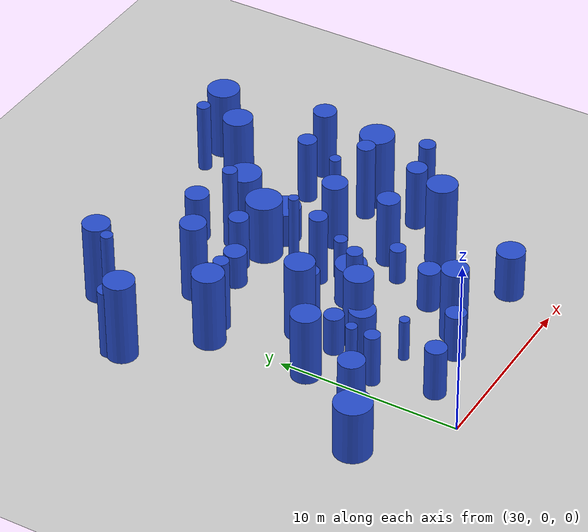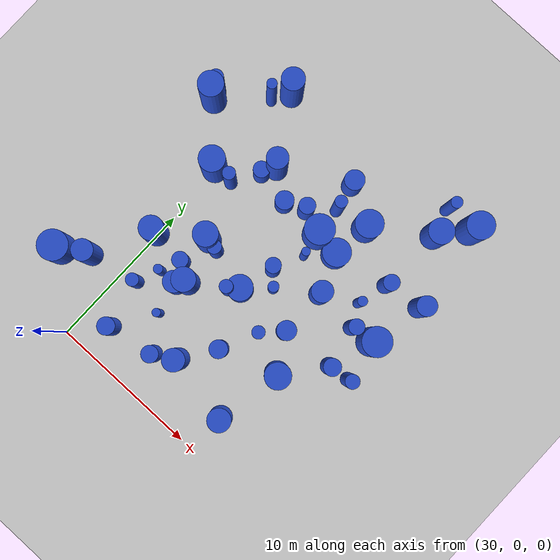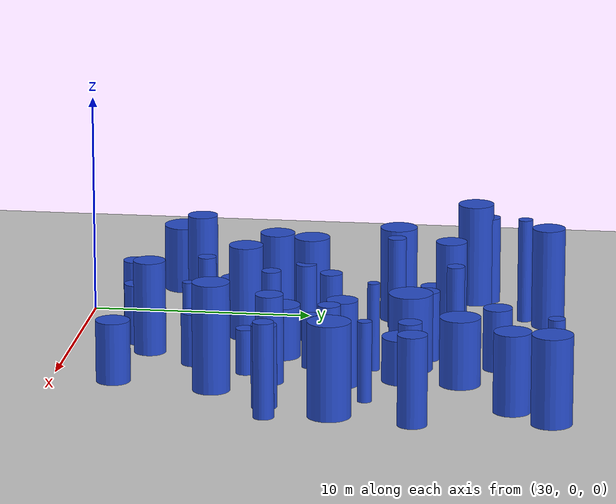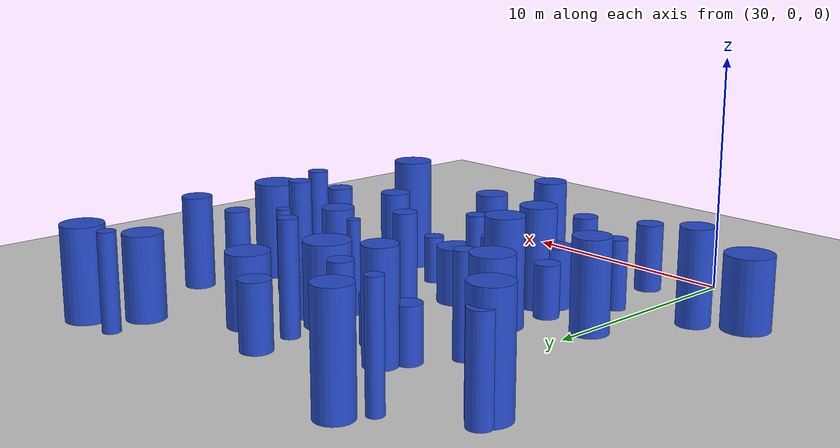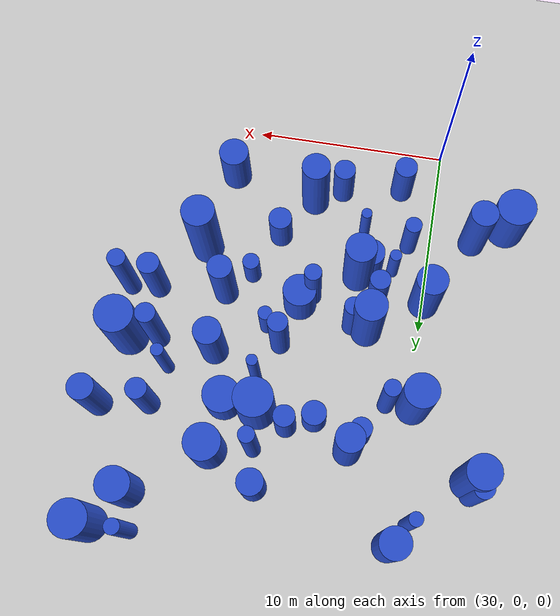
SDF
<sdf version="1.6">
 <world name="default">
  <model name="ground_plane">
   <static>1</static>
   <link name="link">
    <collision name="collision">
     <geometry><plane><normal>0 0 1</normal><size>100 100</size></plane></geometry>
     <surface><friction><ode><mu>100</mu><mu2>50</mu2></ode></friction></surface>
    </collision>
    <visual name="visual">
     <cast_shadows>0</cast_shadows>
     <geometry><plane><normal>0 0 1</normal><size>100 100</size></plane></geometry>
     <material>
      <script><uri>file://media/materials/scripts/gazebo.material</uri><name>Gazebo/Grey</name></script>
     </material>
    </visual>
   </link>
  </model>
  <model name="1">
   <static>0</static>
   <link name="link">
    <inertial>
     <mass>2</mass>
     <inertia><ixx>3.81588</ixx><ixy>0</ixy><ixz>0</ixz><iyy>3.81588</iyy><iyz>0</iyz><izz>0.158534</izz></inertia>
    </inertial>
    <collision name="collision">
     <geometry><cylinder><length>4.73494</length><radius>0.398164</radius></cylinder></geometry>
     <surface><contact><collide_without_contact>1</collide_without_contact></contact></surface>
    </collision>
    <visual name="visual">
     <geometry><cylinder><length>4.73494</length><radius>0.398164</radius></cylinder></geometry>
     <material>
      <script><uri>file://media/materials/scripts/gazebo.material</uri><name>Gazebo/Blue</name></script>
     </material>
    </visual>
    <gravity>0</gravity>
   </link>
   <pose>37.3386 17.4202 2.36747 0 -0 0</pose>
  </model>
  <model name="4">
   <static>0</static>
   <link name="link">
    <inertial>
     <mass>2</mass>
     <inertia><ixx>2.85473</ixx><ixy>0</ixy><ixz>0</ixz><iyy>2.85473</iyy><iyz>0</iyz><izz>0.620901</izz></inertia>
    </inertial>
    <collision name="collision">
     <geometry><cylinder><length>3.90714</length><radius>0.787973</radius></cylinder></geometry>
     <surface><contact><collide_without_contact>1</collide_without_contact></contact></surface>
    </collision>
    <visual name="visual">
     <geometry><cylinder><length>3.90714</length><radius>0.787973</radius></cylinder></geometry>
     <material>
      <script><uri>file://media/materials/scripts/gazebo.material</uri><name>Gazebo/Blue</name></script>
     </material>
    </visual>
    <gravity>0</gravity>
   </link>
   <pose>29.9206 8.51372 1.95357 0 -0 0</pose>
  </model>
  <model name="5">
   <static>0</static>
   <link name="link">
    <inertial>
     <mass>2</mass>
     <inertia><ixx>0.79305</ixx><ixy>0</ixy><ixz>0</ixz><iyy>0.79305</iyy><iyz>0</iyz><izz>0.186767</izz></inertia>
    </inertial>
    <collision name="collision">
     <geometry><cylinder><length>2.0489</length><radius>0.432165</radius></cylinder></geometry>
     <surface><contact><collide_without_contact>1</collide_without_contact></contact></surface>
    </collision>
    <visual name="visual">
     <geometry><cylinder><length>2.0489</length><radius>0.432165</radius></cylinder></geometry>
     <material>
      <script><uri>file://media/materials/scripts/gazebo.material</uri><name>Gazebo/Blue</name></script>
     </material>
    </visual>
    <gravity>0</gravity>
   </link>
   <pose>38.9921 8.31265 1.02445 0 -0 0</pose>
  </model>
  <model name="9">
   <static>0</static>
   <link name="link">
    <inertial>
     <mass>2</mass>
     <inertia><ixx>2.49906</ixx><ixy>0</ixy><ixz>0</ixz><iyy>2.49906</iyy><iyz>0</iyz><izz>0.95958</izz></inertia>
    </inertial>
    <collision name="collision">
     <geometry><cylinder><length>3.48075</length><radius>0.979581</radius></cylinder></geometry>
     <surface><contact><collide_without_contact>1</collide_without_contact></contact></surface>
    </collision>
    <visual name="visual">
     <geometry><cylinder><length>3.48075</length><radius>0.979581</radius></cylinder></geometry>
     <material>
      <script><uri>file://media/materials/scripts/gazebo.material</uri><name>Gazebo/Blue</name></script>
     </material>
    </visual>
    <gravity>0</gravity>
   </link>
   <pose>37.4825 15.4558 1.74037 0 -0 0</pose>
  </model>
  <model name="10">
   <static>0</static>
   <link name="link">
    <inertial>
     <mass>2</mass>
     <inertia><ixx>2.47867</ixx><ixy>0</ixy><ixz>0</ixz><iyy>2.47867</iyy><iyz>0</iyz><izz>0.684649</izz></inertia>
    </inertial>
    <collision name="collision">
     <geometry><cylinder><length>3.58024</length><radius>0.827435</radius></cylinder></geometry>
     <surface><contact><collide_without_contact>1</collide_without_contact></contact></surface>
    </collision>
    <visual name="visual">
     <geometry><cylinder><length>3.58024</length><radius>0.827435</radius></cylinder></geometry>
     <material>
      <script><uri>file://media/materials/scripts/gazebo.material</uri><name>Gazebo/Blue</name></script>
     </material>
    </visual>
    <gravity>0</gravity>
   </link>
   <pose>43.0104 20.4105 1.79012 0 -0 0</pose>
  </model>
  <model name="16">
   <static>0</static>
   <link name="link">
    <inertial>
     <mass>2</mass>
     <inertia><ixx>1.52106</ixx><ixy>0</ixy><ixz>0</ixz><iyy>1.52106</iyy><iyz>0</iyz><izz>0.42879</izz></inertia>
    </inertial>
    <collision name="collision">
     <geometry><cylinder><length>2.8</length><radius>0.65482</radius></cylinder></geometry>
     <surface><contact><collide_without_contact>1</collide_without_contact></contact></surface>
    </collision>
    <visual name="visual">
     <geometry><cylinder><length>2.8</length><radius>0.65482</radius></cylinder></geometry>
     <material>
      <script><uri>file://media/materials/scripts/gazebo.material</uri><name>Gazebo/Blue</name></script>
     </material>
    </visual>
    <gravity>0</gravity>
   </link>
   <pose>36.9714 19.2595 1.4 0 -0 0</pose>
  </model>
  <model name="20">
   <static>0</static>
   <link name="link">
    <inertial>
     <mass>2</mass>
     <inertia><ixx>2.82224</ixx><ixy>0</ixy><ixz>0</ixz><iyy>2.82224</iyy><iyz>0</iyz><izz>0.140236</izz></inertia>
    </inertial>
    <collision name="collision">
     <geometry><cylinder><length>4.06358</length><radius>0.374481</radius></cylinder></geometry>
     <surface><contact><collide_without_contact>1</collide_without_contact></contact></surface>
    </collision>
    <visual name="visual">
     <geometry><cylinder><length>4.06358</length><radius>0.374481</radius></cylinder></geometry>
     <material>
      <script><uri>file://media/materials/scripts/gazebo.material</uri><name>Gazebo/Blue</name></script>
     </material>
    </visual>
    <gravity>0</gravity>
   </link>
   <pose>42.4835 22.2448 2.03179 0 -0 0</pose>
  </model>
  <model name="21">
   <static>0</static>
   <link name="link">
    <inertial>
     <mass>2</mass>
     <inertia><ixx>3.48031</ixx><ixy>0</ixy><ixz>0</ixz><iyy>3.48031</iyy><iyz>0</iyz><izz>0.247758</izz></inertia>
    </inertial>
    <collision name="collision">
     <geometry><cylinder><length>4.4876</length><radius>0.497753</radius></cylinder></geometry>
     <surface><contact><collide_without_contact>1</collide_without_contact></contact></surface>
    </collision>
    <visual name="visual">
     <geometry><cylinder><length>4.4876</length><radius>0.497753</radius></cylinder></geometry>
     <material>
      <script><uri>file://media/materials/scripts/gazebo.material</uri><name>Gazebo/Blue</name></script>
     </material>
    </visual>
    <gravity>0</gravity>
   </link>
   <pose>43.0951 12.5325 2.2438 0 -0 0</pose>
  </model>
  <model name="23">
   <static>0</static>
   <link name="link">
    <inertial>
     <mass>2</mass>
     <inertia><ixx>3.02897</ixx><ixy>0</ixy><ixz>0</ixz><iyy>3.02897</iyy><iyz>0</iyz><izz>0.799249</izz></inertia>
    </inertial>
    <collision name="collision">
     <geometry><cylinder><length>3.97191</length><radius>0.894007</radius></cylinder></geometry>
     <surface><contact><collide_without_contact>1</collide_without_contact></contact></surface>
    </collision>
    <visual name="visual">
     <geometry><cylinder><length>3.97191</length><radius>0.894007</radius></cylinder></geometry>
     <material>
      <script><uri>file://media/materials/scripts/gazebo.material</uri><name>Gazebo/Blue</name></script>
     </material>
    </visual>
    <gravity>0</gravity>
   </link>
   <pose>44.5026 22.2198 1.98596 0 -0 0</pose>
  </model>
  <model name="29">
   <static>0</static>
   <link name="link">
    <inertial>
     <mass>2</mass>
     <inertia><ixx>2.40213</ixx><ixy>0</ixy><ixz>0</ixz><iyy>2.40213</iyy><iyz>0</iyz><izz>0.316267</izz></inertia>
    </inertial>
    <collision name="collision">
     <geometry><cylinder><length>3.66933</length><radius>0.562376</radius></cylinder></geometry>
     <surface><contact><collide_without_contact>1</collide_without_contact></contact></surface>
    </collision>
    <visual name="visual">
     <geometry><cylinder><length>3.66933</length><radius>0.562376</radius></cylinder></geometry>
     <material>
      <script><uri>file://media/materials/scripts/gazebo.material</uri><name>Gazebo/Blue</name></script>
     </material>
    </visual>
    <gravity>0</gravity>
   </link>
   <pose>43.713 9.80193 1.83467 0 -0 0</pose>
  </model>
  <model name="33">
   <static>0</static>
   <link name="link">
    <inertial>
     <mass>2</mass>
     <inertia><ixx>2.44196</ixx><ixy>0</ixy><ixz>0</ixz><iyy>2.44196</iyy><iyz>0</iyz><izz>0.187757</izz></inertia>
    </inertial>
    <collision name="collision">
     <geometry><cylinder><length>3.75347</length><radius>0.43331</radius></cylinder></geometry>
     <surface><contact><collide_without_contact>1</collide_without_contact></contact></surface>
    </collision>
    <visual name="visual">
     <geometry><cylinder><length>3.75347</length><radius>0.43331</radius></cylinder></geometry>
     <material>
      <script><uri>file://media/materials/scripts/gazebo.material</uri><name>Gazebo/Blue</name></script>
     </material>
    </visual>
    <gravity>0</gravity>
   </link>
   <pose>35.6788 9.00993 1.87673 0 -0 0</pose>
  </model>
  <model name="34">
   <static>0</static>
   <link name="link">
    <inertial>
     <mass>2</mass>
     <inertia><ixx>1.29833</ixx><ixy>0</ixy><ixz>0</ixz><iyy>1.29833</iyy><iyz>0</iyz><izz>0.714199</izz></inertia>
    </inertial>
    <collision name="collision">
     <geometry><cylinder><length>2.37642</length><radius>0.845103</radius></cylinder></geometry>
     <surface><contact><collide_without_contact>1</collide_without_contact></contact></surface>
    </collision>
    <visual name="visual">
     <geometry><cylinder><length>2.37642</length><radius>0.845103</radius></cylinder></geometry>
     <material>
      <script><uri>file://media/materials/scripts/gazebo.material</uri><name>Gazebo/Blue</name></script>
     </material>
    </visual>
    <gravity>0</gravity>
   </link>
   <pose>36.2733 9.54869 1.18821 0 -0 0</pose>
  </model>
  <model name="48">
   <static>0</static>
   <link name="link">
    <inertial>
     <mass>2</mass>
     <inertia><ixx>3.26153</ixx><ixy>0</ixy><ixz>0</ixz><iyy>3.26153</iyy><iyz>0</iyz><izz>0.520826</izz></inertia>
    </inertial>
    <collision name="collision">
     <geometry><cylinder><length>4.24343</length><radius>0.721682</radius></cylinder></geometry>
     <surface><contact><collide_without_contact>1</collide_without_contact></contact></surface>
    </collision>
    <visual name="visual">
     <geometry><cylinder><length>4.24343</length><radius>0.721682</radius></cylinder></geometry>
     <material>
      <script><uri>file://media/materials/scripts/gazebo.material</uri><name>Gazebo/Blue</name></script>
     </material>
    </visual>
    <gravity>0</gravity>
   </link>
   <pose>36.3989 3.62936 2.12171 0 -0 0</pose>
  </model>
  <model name="51">
   <static>0</static>
   <link name="link">
    <inertial>
     <mass>2</mass>
     <inertia><ixx>2.86155</ixx><ixy>0</ixy><ixz>0</ixz><iyy>2.86155</iyy><iyz>0</iyz><izz>0.388059</izz></inertia>
    </inertial>
    <collision name="collision">
     <geometry><cylinder><length>4.00064</length><radius>0.622944</radius></cylinder></geometry>
     <surface><contact><collide_without_contact>1</collide_without_contact></contact></surface>
    </collision>
    <visual name="visual">
     <geometry><cylinder><length>4.00064</length><radius>0.622944</radius></cylinder></geometry>
     <material>
      <script><uri>file://media/materials/scripts/gazebo.material</uri><name>Gazebo/Blue</name></script>
     </material>
    </visual>
    <gravity>0</gravity>
   </link>
   <pose>40.1805 9.54253 2.00032 0 -0 0</pose>
  </model>
  <model name="54">
   <static>0</static>
   <link name="link">
    <inertial>
     <mass>2</mass>
     <inertia><ixx>1.57607</ixx><ixy>0</ixy><ixz>0</ixz><iyy>1.57607</iyy><iyz>0</iyz><izz>0.179412</izz></inertia>
    </inertial>
    <collision name="collision">
     <geometry><cylinder><length>2.98633</length><radius>0.423571</radius></cylinder></geometry>
     <surface><contact><collide_without_contact>1</collide_without_contact></contact></surface>
    </collision>
    <visual name="visual">
     <geometry><cylinder><length>2.98633</length><radius>0.423571</radius></cylinder></geometry>
     <material>
      <script><uri>file://media/materials/scripts/gazebo.material</uri><name>Gazebo/Blue</name></script>
     </material>
    </visual>
    <gravity>0</gravity>
   </link>
   <pose>31.1213 5.4114 1.49317 0 -0 0</pose>
  </model>
  <model name="66">
   <static>0</static>
   <link name="link">
    <inertial>
     <mass>2</mass>
     <inertia>
      <ixx>2.20663</ixx>
      <ixy>0</ixy>
      <ixz>0</ixz>
      <iyy>2.20663</iyy>
      <iyz>0</iyz>
      <izz>0.0996871</izz>
     </inertia>
    </inertial>
    <collision name="collision">
     <geometry><cylinder><length>3.59732</length><radius>0.315733</radius></cylinder></geometry>
     <surface><contact><collide_without_contact>1</collide_without_contact></contact></surface>
    </collision>
    <visual name="visual">
     <geometry><cylinder><length>3.59732</length><radius>0.315733</radius></cylinder></geometry>
     <material>
      <script><uri>file://media/materials/scripts/gazebo.material</uri><name>Gazebo/Blue</name></script>
     </material>
    </visual>
    <gravity>0</gravity>
   </link>
   <pose>42.3597 13.9829 1.79866 0 -0 0</pose>
  </model>
  <model name="72">
   <static>0</static>
   <link name="link">
    <inertial>
     <mass>2</mass>
     <inertia><ixx>3.37373</ixx><ixy>0</ixy><ixz>0</ixz><iyy>3.37373</iyy><iyz>0</iyz><izz>0.599551</izz></inertia>
    </inertial>
    <collision name="collision">
     <geometry><cylinder><length>4.29461</length><radius>0.774307</radius></cylinder></geometry>
     <surface><contact><collide_without_contact>1</collide_without_contact></contact></surface>
    </collision>
    <visual name="visual">
     <geometry><cylinder><length>4.29461</length><radius>0.774307</radius></cylinder></geometry>
     <material>
      <script><uri>file://media/materials/scripts/gazebo.material</uri><name>Gazebo/Blue</name></script>
     </material>
    </visual>
    <gravity>0</gravity>
   </link>
   <pose>33.5461 7.57259 2.14731 0 -0 0</pose>
  </model>
  <model name="78">
   <static>0</static>
   <link name="link">
    <inertial>
     <mass>2</mass>
     <inertia><ixx>2.13726</ixx><ixy>0</ixy><ixz>0</ixz><iyy>2.13726</iyy><iyz>0</iyz><izz>0.219295</izz></inertia>
    </inertial>
    <collision name="collision">
     <geometry><cylinder><length>3.48793</length><radius>0.46829</radius></cylinder></geometry>
     <surface><contact><collide_without_contact>1</collide_without_contact></contact></surface>
    </collision>
    <visual name="visual">
     <geometry><cylinder><length>3.48793</length><radius>0.46829</radius></cylinder></geometry>
     <material>
      <script><uri>file://media/materials/scripts/gazebo.material</uri><name>Gazebo/Blue</name></script>
     </material>
    </visual>
    <gravity>0</gravity>
   </link>
   <pose>33.4722 10.2994 1.74397 0 -0 0</pose>
  </model>
  <model name="85">
   <static>0</static>
   <link name="link">
    <inertial>
     <mass>2</mass>
     <inertia>
      <ixx>1.04976</ixx>
      <ixy>0</ixy>
      <ixz>0</ixz>
      <iyy>1.04976</iyy>
      <iyz>0</iyz>
      <izz>0.0926647</izz>
     </inertia>
    </inertial>
    <collision name="collision">
     <geometry><cylinder><length>2.45369</length><radius>0.304409</radius></cylinder></geometry>
     <surface><contact><collide_without_contact>1</collide_without_contact></contact></surface>
    </collision>
    <visual name="visual">
     <geometry><cylinder><length>2.45369</length><radius>0.304409</radius></cylinder></geometry>
     <material>
      <script><uri>file://media/materials/scripts/gazebo.material</uri><name>Gazebo/Blue</name></script>
     </material>
    </visual>
    <gravity>0</gravity>
   </link>
   <pose>31.7715 6.96102 1.22685 0 -0 0</pose>
  </model>
  <model name="97">
   <static>0</static>
   <link name="link">
    <inertial>
     <mass>2</mass>
     <inertia><ixx>1.02493</ixx><ixy>0</ixy><ixz>0</ixz><iyy>1.02493</iyy><iyz>0</iyz><izz>0.288554</izz></inertia>
    </inertial>
    <collision name="collision">
     <geometry><cylinder><length>2.29868</length><radius>0.537172</radius></cylinder></geometry>
     <surface><contact><collide_without_contact>1</collide_without_contact></contact></surface>
    </collision>
    <visual name="visual">
     <geometry><cylinder><length>2.29868</length><radius>0.537172</radius></cylinder></geometry>
     <material>
      <script><uri>file://media/materials/scripts/gazebo.material</uri><name>Gazebo/Blue</name></script>
     </material>
    </visual>
    <gravity>0</gravity>
   </link>
   <pose>32.2275 15.8811 1.14934 0 -0 0</pose>
  </model>
  <model name="101">
   <static>0</static>
   <link name="link">
    <inertial>
     <mass>2</mass>
     <inertia><ixx>2.52382</ixx><ixy>0</ixy><ixz>0</ixz><iyy>2.52382</iyy><iyz>0</iyz><izz>0.271897</izz></inertia>
    </inertial>
    <collision name="collision">
     <geometry><cylinder><length>3.78514</length><radius>0.521438</radius></cylinder></geometry>
     <surface><contact><collide_without_contact>1</collide_without_contact></contact></surface>
    </collision>
    <visual name="visual">
     <geometry><cylinder><length>3.78514</length><radius>0.521438</radius></cylinder></geometry>
     <material>
      <script><uri>file://media/materials/scripts/gazebo.material</uri><name>Gazebo/Blue</name></script>
     </material>
    </visual>
    <gravity>0</gravity>
   </link>
   <pose>42.8813 15.9971 1.89257 0 -0 0</pose>
  </model>
  <model name="103">
   <static>0</static>
   <link name="link">
    <inertial>
     <mass>2</mass>
     <inertia><ixx>2.72213</ixx><ixy>0</ixy><ixz>0</ixz><iyy>2.72213</iyy><iyz>0</iyz><izz>0.486014</izz></inertia>
    </inertial>
    <collision name="collision">
     <geometry><cylinder><length>3.85678</length><radius>0.697147</radius></cylinder></geometry>
     <surface><contact><collide_without_contact>1</collide_without_contact></contact></surface>
    </collision>
    <visual name="visual">
     <geometry><cylinder><length>3.85678</length><radius>0.697147</radius></cylinder></geometry>
     <material>
      <script><uri>file://media/materials/scripts/gazebo.material</uri><name>Gazebo/Blue</name></script>
     </material>
    </visual>
    <gravity>0</gravity>
   </link>
   <pose>40.1712 12.7482 1.92839 0 -0 0</pose>
  </model>
  <model name="106">
   <static>0</static>
   <link name="link">
    <inertial>
     <mass>2</mass>
     <inertia><ixx>1.98531</ixx><ixy>0</ixy><ixz>0</ixz><iyy>1.98531</iyy><iyz>0</iyz><izz>0.825751</izz></inertia>
    </inertial>
    <collision name="collision">
     <geometry><cylinder><length>3.07158</length><radius>0.908708</radius></cylinder></geometry>
     <surface><contact><collide_without_contact>1</collide_without_contact></contact></surface>
    </collision>
    <visual name="visual">
     <geometry><cylinder><length>3.07158</length><radius>0.908708</radius></cylinder></geometry>
     <material>
      <script><uri>file://media/materials/scripts/gazebo.material</uri><name>Gazebo/Blue</name></script>
     </material>
    </visual>
    <gravity>0</gravity>
   </link>
   <pose>39.4858 17.8355 1.53579 0 -0 0</pose>
  </model>
  <model name="107">
   <static>0</static>
   <link name="link">
    <inertial>
     <mass>2</mass>
     <inertia><ixx>2.6751</ixx><ixy>0</ixy><ixz>0</ixz><iyy>2.6751</iyy><iyz>0</iyz><izz>0.0768651</izz></inertia>
    </inertial>
    <collision name="collision">
     <geometry><cylinder><length>3.97744</length><radius>0.277246</radius></cylinder></geometry>
     <surface><contact><collide_without_contact>1</collide_without_contact></contact></surface>
    </collision>
    <visual name="visual">
     <geometry><cylinder><length>3.97744</length><radius>0.277246</radius></cylinder></geometry>
     <material>
      <script><uri>file://media/materials/scripts/gazebo.material</uri><name>Gazebo/Blue</name></script>
     </material>
    </visual>
    <gravity>0</gravity>
   </link>
   <pose>37.7998 13.8436 1.98872 0 -0 0</pose>
  </model>
  <model name="109">
   <static>0</static>
   <link name="link">
    <inertial>
     <mass>2</mass>
     <inertia><ixx>1.3731</ixx><ixy>0</ixy><ixz>0</ixz><iyy>1.3731</iyy><iyz>0</iyz><izz>0.503151</izz></inertia>
    </inertial>
    <collision name="collision">
     <geometry><cylinder><length>2.59406</length><radius>0.709332</radius></cylinder></geometry>
     <surface><contact><collide_without_contact>1</collide_without_contact></contact></surface>
    </collision>
    <visual name="visual">
     <geometry><cylinder><length>2.59406</length><radius>0.709332</radius></cylinder></geometry>
     <material>
      <script><uri>file://media/materials/scripts/gazebo.material</uri><name>Gazebo/Blue</name></script>
     </material>
    </visual>
    <gravity>0</gravity>
   </link>
   <pose>33.0318 7.0477 1.29703 0 -0 0</pose>
  </model>
  <model name="113">
   <static>0</static>
   <link name="link">
    <inertial>
     <mass>2</mass>
     <inertia><ixx>1.78792</ixx><ixy>0</ixy><ixz>0</ixz><iyy>1.78792</iyy><iyz>0</iyz><izz>0.287967</izz></inertia>
    </inertial>
    <collision name="collision">
     <geometry><cylinder><length>3.14064</length><radius>0.536625</radius></cylinder></geometry>
     <surface><contact><collide_without_contact>1</collide_without_contact></contact></surface>
    </collision>
    <visual name="visual">
     <geometry><cylinder><length>3.14064</length><radius>0.536625</radius></cylinder></geometry>
     <material>
      <script><uri>file://media/materials/scripts/gazebo.material</uri><name>Gazebo/Blue</name></script>
     </material>
    </visual>
    <gravity>0</gravity>
   </link>
   <pose>35.9208 16.0488 1.57032 0 -0 0</pose>
  </model>
  <model name="119">
   <static>0</static>
   <link name="link">
    <inertial>
     <mass>2</mass>
     <inertia><ixx>1.0452</ixx><ixy>0</ixy><ixz>0</ixz><iyy>1.0452</iyy><iyz>0</iyz><izz>0.0754433</izz></inertia>
    </inertial>
    <collision name="collision">
     <geometry><cylinder><length>2.45863</length><radius>0.274669</radius></cylinder></geometry>
     <surface><contact><collide_without_contact>1</collide_without_contact></contact></surface>
    </collision>
    <visual name="visual">
     <geometry><cylinder><length>2.45863</length><radius>0.274669</radius></cylinder></geometry>
     <material>
      <script><uri>file://media/materials/scripts/gazebo.material</uri><name>Gazebo/Blue</name></script>
     </material>
    </visual>
    <gravity>0</gravity>
   </link>
   <pose>33.5432 4.92379 1.22931 0 -0 0</pose>
  </model>
  <model name="127">
   <static>0</static>
   <link name="link">
    <inertial>
     <mass>2</mass>
     <inertia><ixx>3.41432</ixx><ixy>0</ixy><ixz>0</ixz><iyy>3.41432</iyy><iyz>0</iyz><izz>0.901291</izz></inertia>
    </inertial>
    <collision name="collision">
     <geometry><cylinder><length>4.21688</length><radius>0.949363</radius></cylinder></geometry>
     <surface><contact><collide_without_contact>1</collide_without_contact></contact></surface>
    </collision>
    <visual name="visual">
     <geometry><cylinder><length>4.21688</length><radius>0.949363</radius></cylinder></geometry>
     <material>
      <script><uri>file://media/materials/scripts/gazebo.material</uri><name>Gazebo/Blue</name></script>
     </material>
    </visual>
    <gravity>0</gravity>
   </link>
   <pose>44.6225 12.7235 2.10844 0 -0 0</pose>
  </model>
  <model name="132">
   <static>0</static>
   <link name="link">
    <inertial>
     <mass>2</mass>
     <inertia><ixx>3.47744</ixx><ixy>0</ixy><ixz>0</ixz><iyy>3.47744</iyy><iyz>0</iyz><izz>0.716025</izz></inertia>
    </inertial>
    <collision name="collision">
     <geometry><cylinder><length>4.32626</length><radius>0.846183</radius></cylinder></geometry>
     <surface><contact><collide_without_contact>1</collide_without_contact></contact></surface>
    </collision>
    <visual name="visual">
     <geometry><cylinder><length>4.32626</length><radius>0.846183</radius></cylinder></geometry>
     <material>
      <script><uri>file://media/materials/scripts/gazebo.material</uri><name>Gazebo/Blue</name></script>
     </material>
    </visual>
    <gravity>0</gravity>
   </link>
   <pose>29.8014 14.0881 2.16313 0 -0 0</pose>
  </model>
  <model name="134">
   <static>0</static>
   <link name="link">
    <inertial>
     <mass>2</mass>
     <inertia><ixx>3.83594</ixx><ixy>0</ixy><ixz>0</ixz><iyy>3.83594</iyy><iyz>0</iyz><izz>0.559969</izz></inertia>
    </inertial>
    <collision name="collision">
     <geometry><cylinder><length>4.61906</length><radius>0.748311</radius></cylinder></geometry>
     <surface><contact><collide_without_contact>1</collide_without_contact></contact></surface>
    </collision>
    <visual name="visual">
     <geometry><cylinder><length>4.61906</length><radius>0.748311</radius></cylinder></geometry>
     <material>
      <script><uri>file://media/materials/scripts/gazebo.material</uri><name>Gazebo/Blue</name></script>
     </material>
    </visual>
    <gravity>0</gravity>
   </link>
   <pose>30.1511 20.9742 2.30953 0 -0 0</pose>
  </model>
  <model name="140">
   <static>0</static>
   <link name="link">
    <inertial>
     <mass>2</mass>
     <inertia><ixx>1.40632</ixx><ixy>0</ixy><ixz>0</ixz><iyy>1.40632</iyy><iyz>0</iyz><izz>0.308108</izz></inertia>
    </inertial>
    <collision name="collision">
     <geometry><cylinder><length>2.7411</length><radius>0.555075</radius></cylinder></geometry>
     <surface><contact><collide_without_contact>1</collide_without_contact></contact></surface>
    </collision>
    <visual name="visual">
     <geometry><cylinder><length>2.7411</length><radius>0.555075</radius></cylinder></geometry>
     <material>
      <script><uri>file://media/materials/scripts/gazebo.material</uri><name>Gazebo/Blue</name></script>
     </material>
    </visual>
    <gravity>0</gravity>
   </link>
   <pose>35.0094 2.803 1.37055 0 -0 0</pose>
  </model>
  <model name="146">
   <static>0</static>
   <link name="link">
    <inertial>
     <mass>2</mass>
     <inertia><ixx>4.0179</ixx><ixy>0</ixy><ixz>0</ixz><iyy>4.0179</iyy><iyz>0</iyz><izz>0.681055</izz></inertia>
    </inertial>
    <collision name="collision">
     <geometry><cylinder><length>4.69726</length><radius>0.82526</radius></cylinder></geometry>
     <surface><contact><collide_without_contact>1</collide_without_contact></contact></surface>
    </collision>
    <visual name="visual">
     <geometry><cylinder><length>4.69726</length><radius>0.82526</radius></cylinder></geometry>
     <material>
      <script><uri>file://media/materials/scripts/gazebo.material</uri><name>Gazebo/Blue</name></script>
     </material>
    </visual>
    <gravity>0</gravity>
   </link>
   <pose>26.6902 17.3442 2.34863 0 -0 0</pose>
  </model>
  <model name="155">
   <static>0</static>
   <link name="link">
    <inertial>
     <mass>2</mass>
     <inertia><ixx>2.94944</ixx><ixy>0</ixy><ixz>0</ixz><iyy>2.94944</iyy><iyz>0</iyz><izz>0.486165</izz></inertia>
    </inertial>
    <collision name="collision">
     <geometry><cylinder><length>4.02966</length><radius>0.697255</radius></cylinder></geometry>
     <surface><contact><collide_without_contact>1</collide_without_contact></contact></surface>
    </collision>
    <visual name="visual">
     <geometry><cylinder><length>4.02966</length><radius>0.697255</radius></cylinder></geometry>
     <material>
      <script><uri>file://media/materials/scripts/gazebo.material</uri><name>Gazebo/Blue</name></script>
     </material>
    </visual>
    <gravity>0</gravity>
   </link>
   <pose>27.8001 4.70758 2.01483 0 -0 0</pose>
  </model>
  <model name="171">
   <static>0</static>
   <link name="link">
    <inertial>
     <mass>2</mass>
     <inertia><ixx>2.06842</ixx><ixy>0</ixy><ixz>0</ixz><iyy>2.06842</iyy><iyz>0</iyz><izz>0.996957</izz></inertia>
    </inertial>
    <collision name="collision">
     <geometry><cylinder><length>3.06915</length><radius>0.998477</radius></cylinder></geometry>
     <surface><contact><collide_without_contact>1</collide_without_contact></contact></surface>
    </collision>
    <visual name="visual">
     <geometry><cylinder><length>3.06915</length><radius>0.998477</radius></cylinder></geometry>
     <material>
      <script><uri>file://media/materials/scripts/gazebo.material</uri><name>Gazebo/Blue</name></script>
     </material>
    </visual>
    <gravity>0</gravity>
   </link>
   <pose>26.0832 3.64066 1.53457 0 -0 0</pose>
  </model>
  <model name="182">
   <static>0</static>
   <link name="link">
    <inertial>
     <mass>2</mass>
     <inertia><ixx>3.01124</ixx><ixy>0</ixy><ixz>0</ixz><iyy>3.01124</iyy><iyz>0</iyz><izz>0.1755</izz></inertia>
    </inertial>
    <collision name="collision">
     <geometry><cylinder><length>4.18819</length><radius>0.418927</radius></cylinder></geometry>
     <surface><contact><collide_without_contact>1</collide_without_contact></contact></surface>
    </collision>
    <visual name="visual">
     <geometry><cylinder><length>4.18819</length><radius>0.418927</radius></cylinder></geometry>
     <material>
      <script><uri>file://media/materials/scripts/gazebo.material</uri><name>Gazebo/Blue</name></script>
     </material>
    </visual>
    <gravity>0</gravity>
   </link>
   <pose>31.1449 14.1519 2.0941 0 -0 0</pose>
  </model>
  <model name="186">
   <static>0</static>
   <link name="link">
    <inertial>
     <mass>2</mass>
     <inertia><ixx>2.93958</ixx><ixy>0</ixy><ixz>0</ixz><iyy>2.93958</iyy><iyz>0</iyz><izz>0.249669</izz></inertia>
    </inertial>
    <collision name="collision">
     <geometry><cylinder><length>4.10956</length><radius>0.499669</radius></cylinder></geometry>
     <surface><contact><collide_without_contact>1</collide_without_contact></contact></surface>
    </collision>
    <visual name="visual">
     <geometry><cylinder><length>4.10956</length><radius>0.499669</radius></cylinder></geometry>
     <material>
      <script><uri>file://media/materials/scripts/gazebo.material</uri><name>Gazebo/Blue</name></script>
     </material>
    </visual>
    <gravity>0</gravity>
   </link>
   <pose>36.9236 11.8681 2.05478 0 -0 0</pose>
  </model>
  <model name="187">
   <static>0</static>
   <link name="link">
    <inertial>
     <mass>2</mass>
     <inertia><ixx>1.57366</ixx><ixy>0</ixy><ixz>0</ixz><iyy>1.57366</iyy><iyz>0</iyz><izz>0.581682</izz></inertia>
    </inertial>
    <collision name="collision">
     <geometry><cylinder><length>2.77433</length><radius>0.76268</radius></cylinder></geometry>
     <surface><contact><collide_without_contact>1</collide_without_contact></contact></surface>
    </collision>
    <visual name="visual">
     <geometry><cylinder><length>2.77433</length><radius>0.76268</radius></cylinder></geometry>
     <material>
      <script><uri>file://media/materials/scripts/gazebo.material</uri><name>Gazebo/Blue</name></script>
     </material>
    </visual>
    <gravity>0</gravity>
   </link>
   <pose>40.8757 2.74416 1.38717 0 -0 0</pose>
  </model>
  <model name="188">
   <static>0</static>
   <link name="link">
    <inertial>
     <mass>2</mass>
     <inertia><ixx>3.7068</ixx><ixy>0</ixy><ixz>0</ixz><iyy>3.7068</iyy><iyz>0</iyz><izz>0.490801</izz></inertia>
    </inertial>
    <collision name="collision">
     <geometry><cylinder><length>4.55723</length><radius>0.700572</radius></cylinder></geometry>
     <surface><contact><collide_without_contact>1</collide_without_contact></contact></surface>
    </collision>
    <visual name="visual">
     <geometry><cylinder><length>4.55723</length><radius>0.700572</radius></cylinder></geometry>
     <material>
      <script><uri>file://media/materials/scripts/gazebo.material</uri><name>Gazebo/Blue</name></script>
     </material>
    </visual>
    <gravity>0</gravity>
   </link>
   <pose>32.7262 16.788 2.27862 0 -0 0</pose>
  </model>
  <model name="193">
   <static>0</static>
   <link name="link">
    <inertial>
     <mass>2</mass>
     <inertia>
      <ixx>0.866241</ixx>
      <ixy>0</ixy>
      <ixz>0</ixz>
      <iyy>0.866241</iyy>
      <iyz>0</iyz>
      <izz>0.378767</izz>
     </inertia>
    </inertial>
    <collision name="collision">
     <geometry><cylinder><length>2.01523</length><radius>0.615441</radius></cylinder></geometry>
     <surface><contact><collide_without_contact>1</collide_without_contact></contact></surface>
    </collision>
    <visual name="visual">
     <geometry><cylinder><length>2.01523</length><radius>0.615441</radius></cylinder></geometry>
     <material>
      <script><uri>file://media/materials/scripts/gazebo.material</uri><name>Gazebo/Blue</name></script>
     </material>
    </visual>
    <gravity>0</gravity>
   </link>
   <pose>34.5801 15.4727 1.00761 0 -0 0</pose>
  </model>
  <model name="202">
   <static>0</static>
   <link name="link">
    <inertial>
     <mass>2</mass>
     <inertia><ixx>3.10138</ixx><ixy>0</ixy><ixz>0</ixz><iyy>3.10138</iyy><iyz>0</iyz><izz>0.209682</izz></inertia>
    </inertial>
    <collision name="collision">
     <geometry><cylinder><length>4.24019</length><radius>0.45791</radius></cylinder></geometry>
     <surface><contact><collide_without_contact>1</collide_without_contact></contact></surface>
    </collision>
    <visual name="visual">
     <geometry><cylinder><length>4.24019</length><radius>0.45791</radius></cylinder></geometry>
     <material>
      <script><uri>file://media/materials/scripts/gazebo.material</uri><name>Gazebo/Blue</name></script>
     </material>
    </visual>
    <gravity>0</gravity>
   </link>
   <pose>45.1348 9.97183 2.1201 0 -0 0</pose>
  </model>
  <model name="206">
   <static>0</static>
   <link name="link">
    <inertial>
     <mass>2</mass>
     <inertia>
      <ixx>0.981413</ixx>
      <ixy>0</ixy>
      <ixz>0</ixz>
      <iyy>0.981413</iyy>
      <iyz>0</iyz>
      <izz>0.28462</izz>
     </inertia>
    </inertial>
    <collision name="collision">
     <geometry><cylinder><length>2.2438</length><radius>0.533498</radius></cylinder></geometry>
     <surface><contact><collide_without_contact>1</collide_without_contact></contact></surface>
    </collision>
    <visual name="visual">
     <geometry><cylinder><length>2.2438</length><radius>0.533498</radius></cylinder></geometry>
     <material>
      <script><uri>file://media/materials/scripts/gazebo.material</uri><name>Gazebo/Blue</name></script>
     </material>
    </visual>
    <gravity>0</gravity>
   </link>
   <pose>32.3544 8.29998 1.1219 0 -0 0</pose>
  </model>
  <model name="208">
   <static>0</static>
   <link name="link">
    <inertial>
     <mass>2</mass>
     <inertia><ixx>2.88239</ixx><ixy>0</ixy><ixz>0</ixz><iyy>2.88239</iyy><iyz>0</iyz><izz>0.418174</izz></inertia>
    </inertial>
    <collision name="collision">
     <geometry><cylinder><length>4.00498</length><radius>0.646664</radius></cylinder></geometry>
     <surface><contact><collide_without_contact>1</collide_without_contact></contact></surface>
    </collision>
    <visual name="visual">
     <geometry><cylinder><length>4.00498</length><radius>0.646664</radius></cylinder></geometry>
     <material>
      <script><uri>file://media/materials/scripts/gazebo.material</uri><name>Gazebo/Blue</name></script>
     </material>
    </visual>
    <gravity>0</gravity>
   </link>
   <pose>45.3882 16.3678 2.00249 0 -0 0</pose>
  </model>
  <model name="211">
   <static>0</static>
   <link name="link">
    <inertial>
     <mass>2</mass>
     <inertia><ixx>1.59118</ixx><ixy>0</ixy><ixz>0</ixz><iyy>1.59118</iyy><iyz>0</iyz><izz>0.330992</izz></inertia>
    </inertial>
    <collision name="collision">
     <geometry><cylinder><length>2.92474</length><radius>0.575319</radius></cylinder></geometry>
     <surface><contact><collide_without_contact>1</collide_without_contact></contact></surface>
    </collision>
    <visual name="visual">
     <geometry><cylinder><length>2.92474</length><radius>0.575319</radius></cylinder></geometry>
     <material>
      <script><uri>file://media/materials/scripts/gazebo.material</uri><name>Gazebo/Blue</name></script>
     </material>
    </visual>
    <gravity>0</gravity>
   </link>
   <pose>31.8902 2.25001 1.46237 0 -0 0</pose>
  </model>
  <model name="212">
   <static>0</static>
   <link name="link">
    <inertial>
     <mass>2</mass>
     <inertia><ixx>1.12089</ixx><ixy>0</ixy><ixz>0</ixz><iyy>1.12089</iyy><iyz>0</iyz><izz>0.355767</izz></inertia>
    </inertial>
    <collision name="collision">
     <geometry><cylinder><length>2.37867</length><radius>0.596462</radius></cylinder></geometry>
     <surface><contact><collide_without_contact>1</collide_without_contact></contact></surface>
    </collision>
    <visual name="visual">
     <geometry><cylinder><length>2.37867</length><radius>0.596462</radius></cylinder></geometry>
     <material>
      <script><uri>file://media/materials/scripts/gazebo.material</uri><name>Gazebo/Blue</name></script>
     </material>
    </visual>
    <gravity>0</gravity>
   </link>
   <pose>37.8915 5.87249 1.18933 0 -0 0</pose>
  </model>
  <model name="215">
   <static>0</static>
   <link name="link">
    <inertial>
     <mass>2</mass>
     <inertia><ixx>3.86896</ixx><ixy>0</ixy><ixz>0</ixz><iyy>3.86896</iyy><iyz>0</iyz><izz>0.110319</izz></inertia>
    </inertial>
    <collision name="collision">
     <geometry><cylinder><length>4.7836</length><radius>0.332143</radius></cylinder></geometry>
     <surface><contact><collide_without_contact>1</collide_without_contact></contact></surface>
    </collision>
    <visual name="visual">
     <geometry><cylinder><length>4.7836</length><radius>0.332143</radius></cylinder></geometry>
     <material>
      <script><uri>file://media/materials/scripts/gazebo.material</uri><name>Gazebo/Blue</name></script>
     </material>
    </visual>
    <gravity>0</gravity>
   </link>
   <pose>29.4248 19.8478 2.3918 0 -0 0</pose>
  </model>
  <model name="223">
   <static>0</static>
   <link name="link">
    <inertial>
     <mass>2</mass>
     <inertia><ixx>1.03772</ixx><ixy>0</ixy><ixz>0</ixz><iyy>1.03772</iyy><iyz>0</iyz><izz>0.128133</izz></inertia>
    </inertial>
    <collision name="collision">
     <geometry><cylinder><length>2.417</length><radius>0.357956</radius></cylinder></geometry>
     <surface><contact><collide_without_contact>1</collide_without_contact></contact></surface>
    </collision>
    <visual name="visual">
     <geometry><cylinder><length>2.417</length><radius>0.357956</radius></cylinder></geometry>
     <material>
      <script><uri>file://media/materials/scripts/gazebo.material</uri><name>Gazebo/Blue</name></script>
     </material>
    </visual>
    <gravity>0</gravity>
   </link>
   <pose>37.7609 11.0113 1.2085 0 -0 0</pose>
  </model>
  <model name="224">
   <static>0</static>
   <link name="link">
    <inertial>
     <mass>2</mass>
     <inertia><ixx>3.74563</ixx><ixy>0</ixy><ixz>0</ixz><iyy>3.74563</iyy><iyz>0</iyz><izz>0.642376</izz></inertia>
    </inertial>
    <collision name="collision">
     <geometry><cylinder><length>4.53284</length><radius>0.801483</radius></cylinder></geometry>
     <surface><contact><collide_without_contact>1</collide_without_contact></contact></surface>
    </collision>
    <visual name="visual">
     <geometry><cylinder><length>4.53284</length><radius>0.801483</radius></cylinder></geometry>
     <material>
      <script><uri>file://media/materials/scripts/gazebo.material</uri><name>Gazebo/Blue</name></script>
     </material>
    </visual>
    <gravity>0</gravity>
   </link>
   <pose>32.6685 10.4652 2.26642 0 -0 0</pose>
  </model>
  <model name="243">
   <static>0</static>
   <link name="link">
    <inertial>
     <mass>2</mass>
     <inertia><ixx>1.10068</ixx><ixy>0</ixy><ixz>0</ixz><iyy>1.10068</iyy><iyz>0</iyz><izz>0.856696</izz></inertia>
    </inertial>
    <collision name="collision">
     <geometry><cylinder><length>2.00848</length><radius>0.925579</radius></cylinder></geometry>
     <surface><contact><collide_without_contact>1</collide_without_contact></contact></surface>
    </collision>
    <visual name="visual">
     <geometry><cylinder><length>2.00848</length><radius>0.925579</radius></cylinder></geometry>
     <material>
      <script><uri>file://media/materials/scripts/gazebo.material</uri><name>Gazebo/Blue</name></script>
     </material>
    </visual>
    <gravity>0</gravity>
   </link>
   <pose>39.1964 15.2826 1.00424 0 -0 0</pose>
  </model>
  <model name="245">
   <static>0</static>
   <link name="link">
    <inertial>
     <mass>2</mass>
     <inertia><ixx>4.31321</ixx><ixy>0</ixy><ixz>0</ixz><iyy>4.31321</iyy><iyz>0</iyz><izz>0.691048</izz></inertia>
    </inertial>
    <collision name="collision">
     <geometry><cylinder><length>4.87915</length><radius>0.831293</radius></cylinder></geometry>
     <surface><contact><collide_without_contact>1</collide_without_contact></contact></surface>
    </collision>
    <visual name="visual">
     <geometry><cylinder><length>4.87915</length><radius>0.831293</radius></cylinder></geometry>
     <material>
      <script><uri>file://media/materials/scripts/gazebo.material</uri><name>Gazebo/Blue</name></script>
     </material>
    </visual>
    <gravity>0</gravity>
   </link>
   <pose>41.6182 7.19636 2.43957 0 -0 0</pose>
  </model>
  <model name="249">
   <static>0</static>
   <link name="link">
    <inertial>
     <mass>2</mass>
     <inertia><ixx>2.81614</ixx><ixy>0</ixy><ixz>0</ixz><iyy>2.81614</iyy><iyz>0</iyz><izz>0.242939</izz></inertia>
    </inertial>
    <collision name="collision">
     <geometry><cylinder><length>4.02094</length><radius>0.492889</radius></cylinder></geometry>
     <surface><contact><collide_without_contact>1</collide_without_contact></contact></surface>
    </collision>
    <visual name="visual">
     <geometry><cylinder><length>4.02094</length><radius>0.492889</radius></cylinder></geometry>
     <material>
      <script><uri>file://media/materials/scripts/gazebo.material</uri><name>Gazebo/Blue</name></script>
     </material>
    </visual>
    <gravity>0</gravity>
   </link>
   <pose>26.4957 17.971 2.01047 0 -0 0</pose>
  </model>
 </world>
</sdf>
